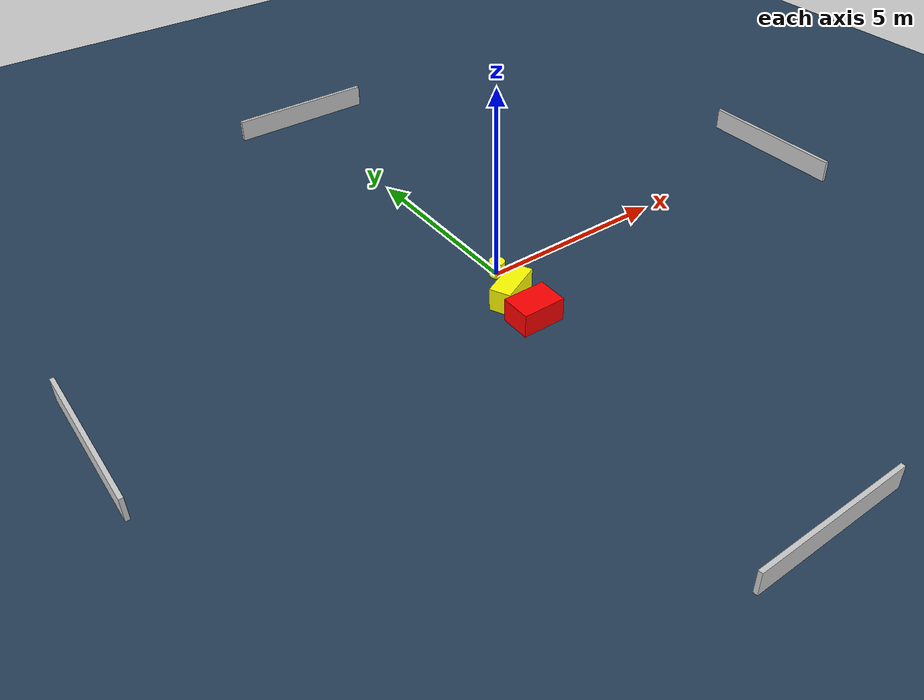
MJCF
<?xml version="1.0" ?>
<mujoco model="generated_environment">
  <option timestep="0.01" integrator="RK4" cone="elliptic"/>
  <default>
    <geom density="1"/>
  </default>
  <asset>
    <texture builtin="gradient" height="3072" name="skybox" rgb1="0.3 0.5 0.7" rgb2="0 0 0" type="skybox" width="512"/>
    <texture builtin="checker" height="300" name="groundplane" rgb1="0.2 0.3 0.4" rgb2="0.1 0.2 0.3" type="2d" width="300"/>
    <material name="groundplane" reflectance="0.2" texrepeat="5 5" texture="groundplane"/>
  </asset>
  <worldbody>
    <light dir="0 0 -1" directional="true" pos="0 0 1.5"/>
    <geom condim="3" friction="0.5 0.005 0.001" material="groundplane" name="floor" pos="0 0 0" size="0 0 0.05" type="plane"/>
    <body name="walls">
      <geom name="wall_1" condim="4" pos="-10.0 0.0 0.3" rgba="0.800000011920929 0.800000011920929 0.800000011920929 1.0" size="0.05 2.0 0.3" type="box"/>
      <geom name="wall_2" condim="4" pos="10.0 0.0 0.3" rgba="0.800000011920929 0.800000011920929 0.800000011920929 1.0" size="0.05 2.0 0.3" type="box"/>
      <geom name="wall_3" condim="4" pos="0.0 -10.0 0.3" rgba="0.800000011920929 0.800000011920929 0.800000011920929 1.0" size="2.0 0.05 0.3" type="box"/>
      <geom name="wall_4" condim="4" pos="0.0 10.0 0.3" rgba="0.800000011920929 0.800000011920929 0.800000011920929 1.0" size="2.0 0.05 0.3" type="box"/>
    </body>
    <body name="robot">
      <joint name="joint_x" type="slide" pos="0 0 0" axis="1 0 0"/>
      <joint name="joint_y" type="slide" pos="0 0 0" axis="0 1 0"/>
      <geom name="robot" type="cylinder" pos="0.0 0.0 0.2" size="0.2 0.2 0.0" mass="5.0" friction="1.0 0.005 0.0001" condim="4" rgba="1.0 1.0 0.0 1.0"/>
    </body>
    <body name="obstacle_1_movable">
      <geom name="obstacle_1_movable" condim="4" pos="-0.3327090722859089 -0.9942719254469878 0.3" euler="0 0 205.67790908832256" friction="0.0 0.005 0.001" rgba="1.0 1.0 0.0 1.0" size="0.5872115007984143 0.26951458711604614 0.3" type="box" mass="0.1"/>
      <joint type="free"/>
    </body>
    <body name="obstacle_2_static">
      <geom name="obstacle_2_static" condim="4" pos="-0.3788925392916476 -1.9133580089042772 0.3" euler="0 0 269.73180436197157" friction="0.0 0.005 0.001" rgba="1.0 0.0 0.0 1.0" size="0.3949438691147025 0.5525492104115914 0.3" type="box"/>
    </body>
  </worldbody>
  <actuator>
    <motor name="actuator_x" joint="joint_x" gear="1" ctrlrange="-1 1"/>
    <motor name="actuator_y" joint="joint_y" gear="1" ctrlrange="-1 1"/>
  </actuator>
</mujoco>
